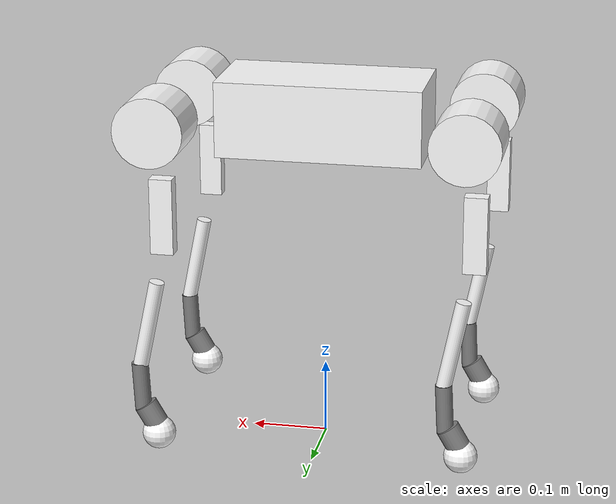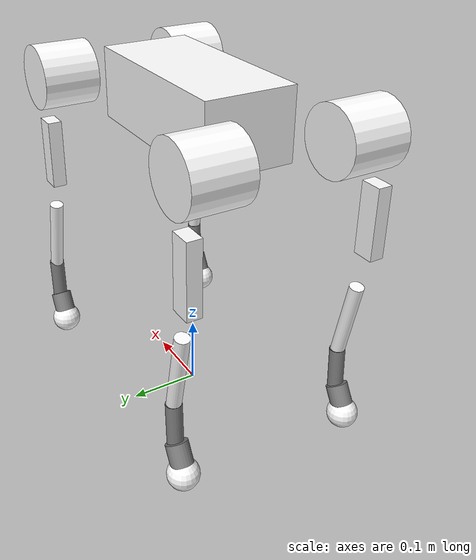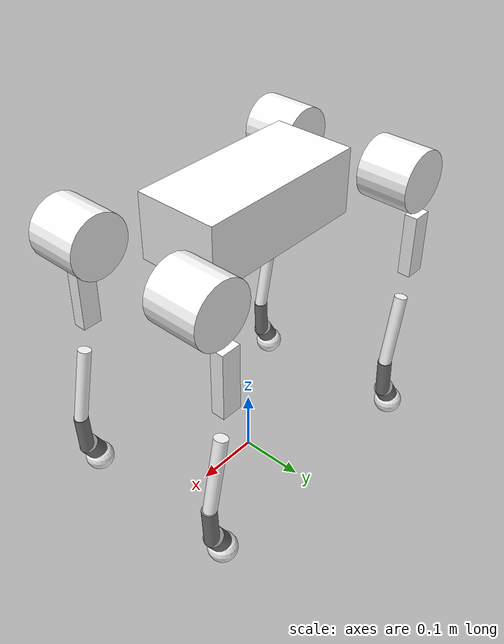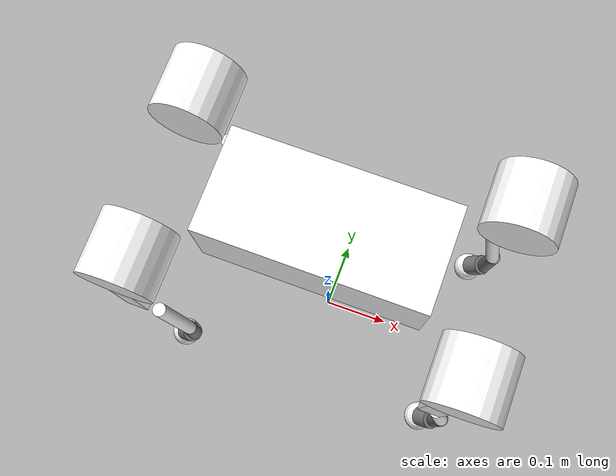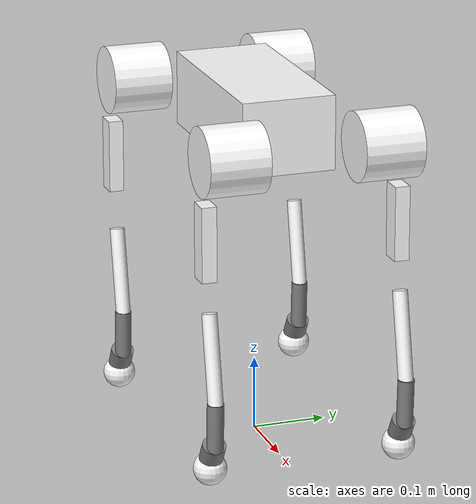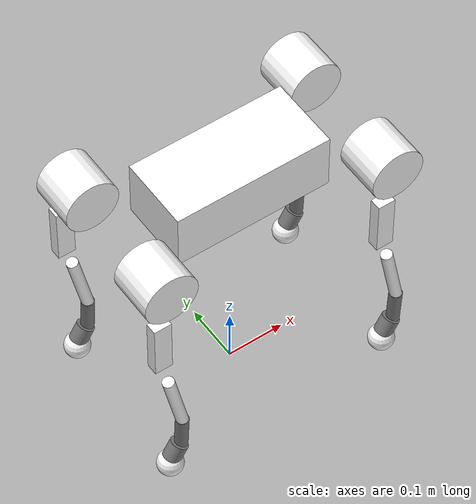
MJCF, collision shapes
<mujoco model="TOE_dog3">
  <compiler angle="radian" meshdir="assets" autolimits="true" />

<option cone="elliptic" impratio="100" />
  <default>
    <default class="dog">
      <geom friction="0.4" margin="0.001" condim="1"/>
      <joint axis="0 1 0" damping="0.1" armature="0.01" frictionloss="0.2"/>
      <motor ctrlrange="-23.7 23.7"/>
      <default class="abduction">
        <joint axis="1 0 0" range="-1.0472 1.0472"/>
      </default>
      <default class="hip">
        <default class="front_hip">
          <joint range="-1.5708 3.4907"/>
        </default>
        <default class="back_hip">
          <joint range="-0.5236 4.5379"/>
        </default>
      </default>
      <default class="knee">
        <joint range="-2.7227 -0.83776"/>
        <motor ctrlrange="-45.43 45.43"/>
      </default>
      <default class="visual">
        <geom type="mesh" contype="0" conaffinity="0" group="2"/>
      </default>
      <default class="collision">
        <geom group="3"/>
        <default class="foot">
          <geom size="0.022" pos="-0.002 0 -0.213" priority="1" condim="6" friction="1.4 0.02 0.01"/>
        </default>
      </default>
    </default>
  </default>
  <asset>
    <mesh name="base" file="base.STL"/>
    <mesh name="FL_hip" file="FL_hip.STL"/>
    <mesh name="FL_thigh" file="FL_thigh.STL"/>
    <mesh name="calf" file="calf.STL"/>
    <mesh name="TOE_foot" file="TOE_foot.STL"/>
    <mesh name="FR_hip" file="FR_hip.STL"/>
    <mesh name="FR_thigh" file="FR_thigh.STL"/>
    <mesh name="RL_hip" file="RL_hip.STL"/>
    <mesh name="RL_thigh" file="RL_thigh.STL"/>
    <mesh name="RR_hip" file="RR_hip.STL"/>
    <mesh name="RR_thigh" file="RR_thigh.STL"/>
  </asset>

  <worldbody>
    <body name="base_link" pos="0 0 0.45" childclass="dog">
    <freejoint />
    <inertial pos="9.86379408949578E-05 -0.000228650036753486 -0.00925201672369771" quat="-0.000543471 0.713435 -0.00173769 0.700719"
        mass="5.716" diaginertia="0.067 0.0560312 0.0239688" />
    <geom type="mesh" contype="0" conaffinity="0" group="1" density="0" rgba="0.752941 0.752941 0.752941 1" mesh="base"/>

    <geom size="0.135 0.063 0.05" type="box" rgba="1 1 1 1" class="collision"/>

    <site name='imu' size='0.01' pos='0.0 0 0.0'/>
    <body name="FL_hip" pos="0.138 0.063 0">
      <inertial pos="0.0544564 -0.012223 -3.33186e-05" quat="0.48755 0.523329 0.477681 0.510139" mass="0.729266" diaginertia="0.000973667 0.000664566 0.000539767"/>
      <joint name="FL_hip_joint" pos="0 0 0" axis="1 0 0" range="-1 1" actuatorfrcrange="-20 20"/>
      <geom type="mesh" contype="0" conaffinity="0" group="1" density="0" rgba="1 1 1 1" mesh="FL_hip" class="visual"/>
      <geom size="0.046 0.04" pos="0.064 0.04 0" quat="0.707107 0.707107 0 0" type="cylinder" rgba="1 1 1 1" class="collision"/>
      <body name="FL_thigh" pos="0.064 0.0673 0">
        <inertial pos="-0.00209131 -0.0157512 -0.0357313" quat="0.708157 0.088053 -0.0563058 0.698276" mass="1.00589" diaginertia="0.00478391 0.00446675 0.000796341"/>
        <joint name="FL_thigh_joint" pos="0 0 0" axis="0 1 0" range="-1.5 2.5" actuatorfrcrange="-20 20"/>
        <geom type="mesh" contype="0" conaffinity="0" group="1" density="0" rgba="1 1 1 1" mesh="FL_thigh"/>
        <geom size="0.05 0.01 0.015" pos="-0.015 0 -0.11" quat="0.707107 0 0.707107 0" type="box" rgba="1 1 1 1" class="collision"/>
        <body name="FL_calf" pos="0 0 -0.2">
          <inertial pos="0.00837262 -2.88098e-05 -0.123831" quat="0.642674 0.00949052 -0.0225232 0.76575" mass="0.283555" diaginertia="0.00176973 0.00175306 4.79811e-05"/>
          <joint name="FL_calf_joint" pos="0 0 0" axis="0 1 0" range="-2.5 -0.8" actuatorfrcrange="-20 20"/>
          <geom type="mesh" contype="0" conaffinity="0" group="1" density="0" rgba="1 1 1 1" mesh="calf"/>
          <geom size="0.01 0.06" pos="0.008 0 -0.06" quat="0.994493 0 -0.104807 0" type="cylinder" rgba="1 1 1 1"/>
          <geom size="0.011 0.0325" pos="0.02 0 -0.148" quat="0.999688 0 0.0249974 0" type="cylinder" class="collision"/>
          <geom size="0.0155 0.015" pos="0.00801333 0 -0.18745" quat="0.965093 0 0.261909 0" type="cylinder" class="collision"/>
          <geom pos="0 0 -0.213" quat="1 0 0 0" type="mesh" contype="0" conaffinity="0" group="1" density="0" rgba="1 1 1 1" mesh="TOE_foot"/>
          <geom size="0.022" pos="-0.002 0 -0.213" rgba="1 1 1 1" class="foot"/>
        </body>
      </body>
    </body>
    <body name="FR_hip" pos="0.138 -0.063 0">
      <inertial pos="0.0544564 0.012223 3.33186e-05" quat="0.493614 0.493614 0.506305 0.506305" mass="0.72926" diaginertia="0.000973279 0.000664 0.000539721"/>
      <joint name="FR_hip_joint" pos="0 0 0" axis="1 0 0" range="-1 1" actuatorfrcrange="-20 20"/>
      <geom type="mesh" contype="0" conaffinity="0" group="1" density="0" rgba="1 1 1 1" mesh="FR_hip"/>
      <geom size="0.046 0.04" pos="0.064 -0.04 0" quat="0.707107 0.707107 0 0" type="cylinder" rgba="1 1 1 1" class="collision"/>
      <body name="FR_thigh" pos="0.064 -0.0673 0">
        <inertial pos="-0.00179872 0.0157557 -0.0361369" quat="0.705452 -0.0323703 0.061048 0.705381" mass="1.02069" diaginertia="0.00492032 0.00459719 0.000814487"/>
        <joint name="FR_thigh_joint" pos="0 0 0" axis="0 1 0" range="-1.5 2.5" actuatorfrcrange="-20 20"/>
        <geom type="mesh" contype="0" conaffinity="0" group="1" density="0" rgba="1 1 1 1" mesh="FR_thigh"/>
        <geom size="0.05 0.01 0.015" pos="-0.015 0 -0.11" quat="0.707107 0 0.707107 0" type="box" rgba="1 1 1 1" class="collision"/>
        <body name="FR_calf" pos="0 0 -0.2">
          <inertial pos="0.00837262 -2.88098e-05 -0.123831" quat="0.706919 -0.0052156 -0.00489906 0.707258" mass="0.283555" diaginertia="0.00177148 0.00175356 4.57348e-05"/>
          <joint name="FR_calf_joint" pos="0 0 0" axis="0 1 0" range="-2.5 -0.8" actuatorfrcrange="-20 20"/>
          <geom type="mesh" contype="0" conaffinity="0" group="1" density="0" rgba="1 1 1 1" mesh="calf"/>
          <geom size="0.01 0.06" pos="0.01 0 -0.06" quat="0.995004 0 -0.0998334 0" type="cylinder" rgba="1 1 1 1" class="collision"/>
          <geom size="0.011 0.0325" pos="0.02 0 -0.148" quat="0.999688 0 0.0249974 0" type="cylinder" class="collision"/>
          <geom size="0.0155 0.015" pos="0.00801333 0 -0.18745" quat="0.965093 0 0.261909 0" type="cylinder" class="collision"/>
          <geom pos="0 0 -0.213" quat="1 0 0 0" type="mesh" contype="0" conaffinity="0" group="1" density="0" rgba="1 1 1 1" mesh="TOE_foot"/>
          <geom size="0.022" pos="-0.002 0 -0.213" rgba="1 1 1 1"/>
        </body>
      </body>
    </body>
    <body name="RL_hip" pos="-0.136 0.063 0">
      <inertial pos="-0.0544564 -0.012223 3.33186e-05" quat="0.492745 0.494482 0.505559 0.507051" mass="0.729266" diaginertia="0.000973282 0.000663997 0.000539721"/>
      <joint name="RL_hip_joint" pos="0 0 0" axis="1 0 0" range="-1 1" actuatorfrcrange="-20 20"/>
      <geom type="mesh" contype="0" conaffinity="0" group="1" density="0" rgba="1 1 1 1" mesh="RL_hip"/>
      <geom size="0.046 0.04" pos="-0.064 0.04 0" quat="0.707107 0.707107 0 0" type="cylinder" rgba="1 1 1 1" class="collision"/>
      <body name="RL_thigh" pos="-0.064 0.0673 0">
        <inertial pos="-0.00209131 -0.0157512 -0.0357313" quat="0.711046 0.0625847 -0.0312494 0.699657" mass="1.00589" diaginertia="0.00478432 0.00446672 0.000795967"/>
        <joint name="RL_thigh_joint" pos="0 0 0" axis="0 1 0" range="-1.5 2.5" actuatorfrcrange="-20 20"/>
        <geom type="mesh" contype="0" conaffinity="0" group="1" density="0" rgba="1 1 1 1" mesh="RL_thigh"/>
        <geom size="0.05 0.01 0.015" pos="-0.015 0 -0.11" quat="0.707107 0 0.707107 0" type="box" rgba="1 1 1 1" class="collision"/>
        <body name="RL_calf" pos="0 0 -0.2">
          <inertial pos="0.00837262 -2.88098e-05 -0.123831" quat="0.706919 -0.0052156 -0.00489906 0.707258" mass="0.283555" diaginertia="0.00177148 0.00175356 4.57348e-05"/>
          <joint name="RL_calf_joint" pos="0 0 0" axis="0 1 0" range="-2.5 -0.8" actuatorfrcrange="-20 20"/>
          <geom type="mesh" contype="0" conaffinity="0" group="1" density="0" rgba="1 1 1 1" mesh="calf"/>
          <geom size="0.01 0.06" pos="0.01 0 -0.06" quat="0.995004 0 -0.0998334 0" type="cylinder" rgba="1 1 1 1" class="collision"/>
          <geom size="0.011 0.0325" pos="0.02 0 -0.148" quat="0.999688 0 0.0249974 0" type="cylinder" class="collision"/>
          <geom size="0.0155 0.015" pos="0.00801333 0 -0.18745" quat="0.965093 0 0.261909 0" type="cylinder" class="collision"/>
          <geom pos="0 0 -0.213" quat="1 0 0 0" type="mesh" contype="0" conaffinity="0" group="1" density="0" rgba="1 1 1 1" mesh="TOE_foot"/>
          <geom size="0.022" pos="-0.002 0 -0.213" rgba="1 1 1 1"/>
        </body>
      </body>
    </body>
    <body name="RR_hip" pos="-0.136 -0.063 0">
      <inertial pos="-0.0544564 0.012223 -3.33186e-05" quat="0.505559 0.507051 0.492745 0.494482" mass="0.729266" diaginertia="0.000973282 0.000663997 0.000539721"/>
      <joint name="RR_hip_joint" pos="0 0 0" axis="1 0 0" range="-1 1" actuatorfrcrange="-20 20"/>
      <geom type="mesh" contype="0" conaffinity="0" group="1" density="0" rgba="1 1 1 1" mesh="RR_hip"/>
      <geom size="0.046 0.04" pos="-0.064 -0.04 0" quat="0.707107 0.707107 0 0" type="cylinder" rgba="1 1 1 1" class="collision"/>
      <body name="RR_thigh" pos="-0.064 -0.0673 0">
        <inertial pos="-0.00179872 0.0157557 -0.0361369" quat="0.705378 -0.0324105 0.0610056 0.705457" mass="1.02069" diaginertia="0.00492032 0.00459715 0.000814527"/>
        <joint name="RR_thigh_joint" pos="0 0 0" axis="0 1 0" range="-1.5 2.5" actuatorfrcrange="-20 20"/>
        <geom type="mesh" contype="0" conaffinity="0" group="1" density="0" rgba="1 1 1 1" mesh="RR_thigh"/>
        <geom size="0.05 0.01 0.015" pos="-0.015 0 -0.11" quat="0.707107 0 0.707107 0" type="box" rgba="1 1 1 1" class="collision"/>
        <body name="RR_calf" pos="0 0 -0.213">
          <inertial pos="0.00837262 -2.88098e-05 -0.123831" quat="0.706919 -0.0052156 -0.00489906 0.707258" mass="0.283555" diaginertia="0.00177148 0.00175356 4.57348e-05"/>
          <joint name="RR_calf_joint" pos="0 0 0" axis="0 1 0" range="-2.5 -0.8" actuatorfrcrange="-20 20"/>
          <geom type="mesh" contype="0" conaffinity="0" group="1" density="0" rgba="1 1 1 1" mesh="calf"/>
          <geom size="0.01 0.06" pos="0.01 0 -0.06" quat="0.995004 0 -0.0998334 0" type="cylinder" rgba="1 1 1 1" class="collision"/>
          <geom size="0.011 0.0325" pos="0.02 0 -0.148" quat="0.999688 0 0.0249974 0" type="cylinder" class="collision"/>
          <geom size="0.0155 0.015" pos="0.00801333 0 -0.18745" quat="0.965093 0 0.261909 0" type="cylinder" class="collision"/>
          <geom pos="0 0 -0.213" quat="1 0 0 0" type="mesh" contype="0" conaffinity="0" group="1" density="0" rgba="1 1 1 1" mesh="TOE_foot"/>
          <geom size="0.022" pos="-0.002 0 -0.213" rgba="1 1 1 1"/>
        </body>
      </body>
</body>

    </body>
  </worldbody>
<actuator>

    <motor name="FL_hip_joint" joint="FL_hip_joint" gear="1" ctrllimited="true" ctrlrange="-20 20"/>
		<motor name="FL_thigh_joint" joint="FL_thigh_joint" gear="1" ctrllimited="true" ctrlrange="-20 20"/>
		<motor name="FL_calf_joint" joint="FL_calf_joint" gear="1" ctrllimited="true" ctrlrange="-20 20"/>

		<motor name="FR_hip_joint" joint="FR_hip_joint" gear="1" ctrllimited="true" ctrlrange="-20 20"/>
		<motor name="FR_thigh_joint" joint="FR_thigh_joint" gear="1" ctrllimited="true" ctrlrange="-20 20"/>
		<motor name="FR_calf_joint" joint="FR_calf_joint" gear="1" ctrllimited="true" ctrlrange="-20 20"/>

    <motor name="RL_hip_joint" joint="RL_hip_joint" gear="1" ctrllimited="true" ctrlrange="-20 20"/>
		<motor name="RL_thigh_joint" joint="RL_thigh_joint" gear="1" ctrllimited="true" ctrlrange="-20 20"/>
		<motor name="RL_calf_joint" joint="RL_calf_joint" gear="1" ctrllimited="true" ctrlrange="-20 20"/>

		<motor name="RR_hip_joint" joint="RR_hip_joint" gear="1" ctrllimited="true" ctrlrange="-20 20"/>
		<motor name="RR_thigh_joint" joint="RR_thigh_joint" gear="1" ctrllimited="true" ctrlrange="-20 20"/>
		<motor name="RR_calf_joint" joint="RR_calf_joint" gear="1" ctrllimited="true" ctrlrange="-20 20"/>

  </actuator>
  <sensor>
    <jointpos name="FL_hip_pos" joint="FL_hip_joint" />
    <jointpos name="FL_thigh_pos" joint="FL_thigh_joint" />
    <jointpos name="FL_calf_pos" joint="FL_calf_joint" />
    <jointpos name="FR_hip_pos" joint="FR_hip_joint" />
    <jointpos name="FR_thigh_pos" joint="FR_thigh_joint" />
    <jointpos name="FR_calf_pos" joint="FR_calf_joint" />
    <jointpos name="RL_hip_pos" joint="RL_hip_joint" />
    <jointpos name="RL_thigh_pos" joint="RL_thigh_joint" />
    <jointpos name="RL_calf_pos" joint="RL_calf_joint" />
    <jointpos name="RR_hip_pos" joint="RR_hip_joint" />
    <jointpos name="RR_thigh_pos" joint="RR_thigh_joint" />
    <jointpos name="RR_calf_pos" joint="RR_calf_joint" />

    <jointvel name="FL_hip_vel" joint="FL_hip_joint" />
    <jointvel name="FL_thigh_vel" joint="FL_thigh_joint" />
    <jointvel name="FL_calf_vel" joint="FL_calf_joint" />
    <jointvel name="FR_hip_vel" joint="FR_hip_joint" />
    <jointvel name="FR_thigh_vel" joint="FR_thigh_joint" />
    <jointvel name="FR_calf_vel" joint="FR_calf_joint" />
    <jointvel name="RL_hip_vel" joint="RL_hip_joint" />
    <jointvel name="RL_thigh_vel" joint="RL_thigh_joint" />
    <jointvel name="RL_calf_vel" joint="RL_calf_joint" />
    <jointvel name="RR_hip_vel" joint="RR_hip_joint" />
    <jointvel name="RR_thigh_vel" joint="RR_thigh_joint" />
    <jointvel name="RR_calf_vel" joint="RR_calf_joint" />

    <jointactuatorfrc name="FL_hip_torque" joint="FL_hip_joint" noise="0.01" />
    <jointactuatorfrc name="FL_thigh_torque" joint="FL_thigh_joint" noise="0.01" />
    <jointactuatorfrc name="FL_calf_torque" joint="FL_calf_joint" noise="0.01" />
    <jointactuatorfrc name="FR_hip_torque" joint="FR_hip_joint" noise="0.01" />
    <jointactuatorfrc name="FR_thigh_torque" joint="FR_thigh_joint" noise="0.01" />
    <jointactuatorfrc name="FR_calf_torque" joint="FR_calf_joint" noise="0.01" />
    <jointactuatorfrc name="RL_hip_torque" joint="RL_hip_joint" noise="0.01" />
    <jointactuatorfrc name="RL_thigh_torque" joint="RL_thigh_joint" noise="0.01" />
    <jointactuatorfrc name="RL_calf_torque" joint="RL_calf_joint" noise="0.01" />

    <jointactuatorfrc name="RR_hip_torque" joint="RR_hip_joint" noise="0.01" />
    <jointactuatorfrc name="RR_thigh_torque" joint="RR_thigh_joint" noise="0.01" />
    <jointactuatorfrc name="RR_calf_torque" joint="RR_calf_joint" noise="0.01" />

    <framequat     name='orientation' objtype='site' noise='0.001' objname='imu'/>
    <framepos      name='position' objtype='site' noise='0.001' objname='imu'/>
    <framelinvel  name="base_lin_vel" objtype="site" objname="imu" />
    <gyro          name='angular-velocity'    site='imu' noise='0.005' cutoff='34.9'/>
    <velocimeter   name='linear-velocity'     site='imu' noise='0.001' cutoff='30'/>
    <accelerometer name='linear-acceleration' site='imu' noise='0.005' cutoff='157'/>
    <magnetometer  name='magnetometer'        site='imu'/>

  </sensor>

  <keyframe>
    <key name="home" qpos="0 0 0.27 1 0 0 0 0 0.9 -1.8 0 0.9 -1.8 0 0.9 -1.8 0 0.9 -1.8"
      ctrl="0 0.9 -1.8 0 0.9 -1.8 0 0.9 -1.8 0 0.9 -1.8" />
  </keyframe>
</mujoco>
